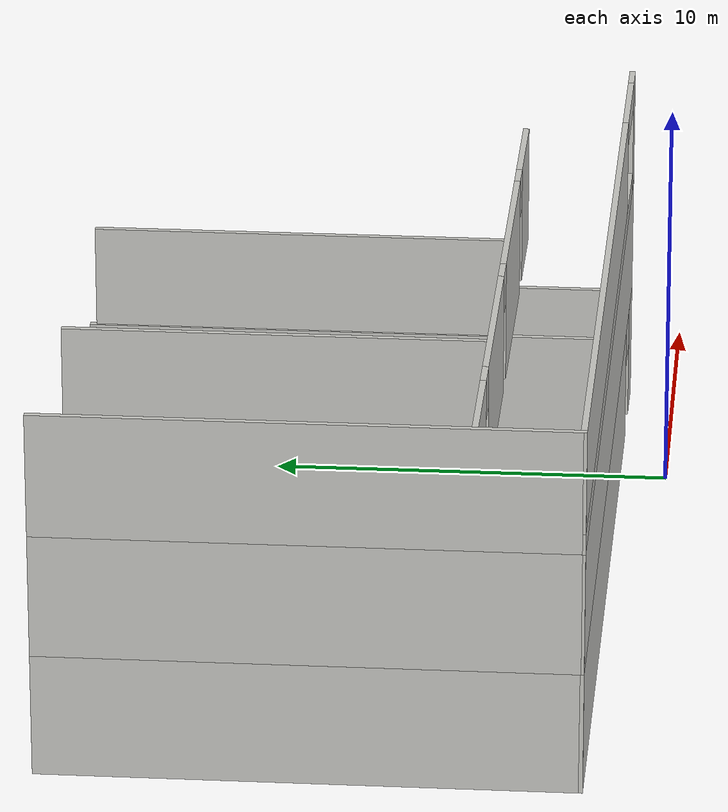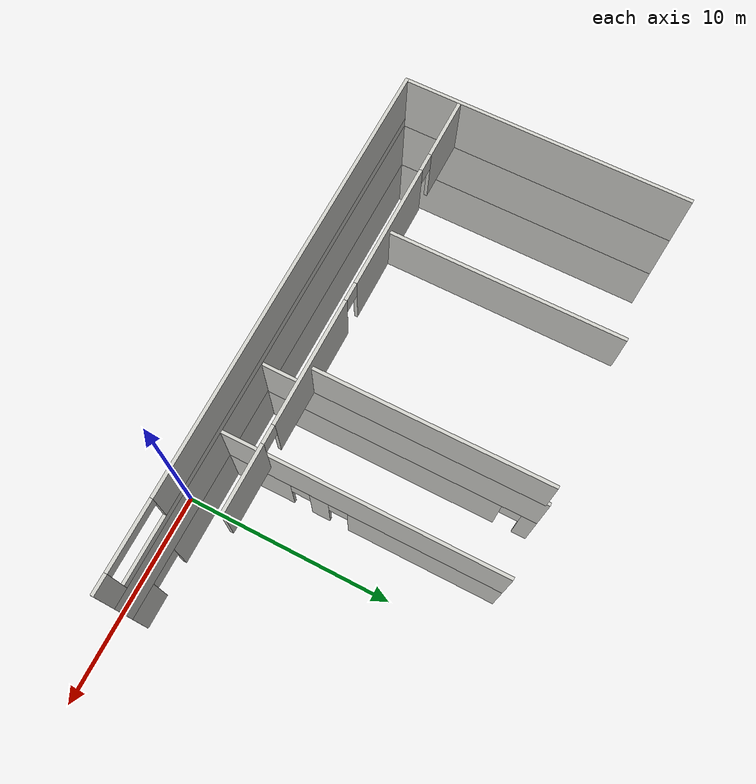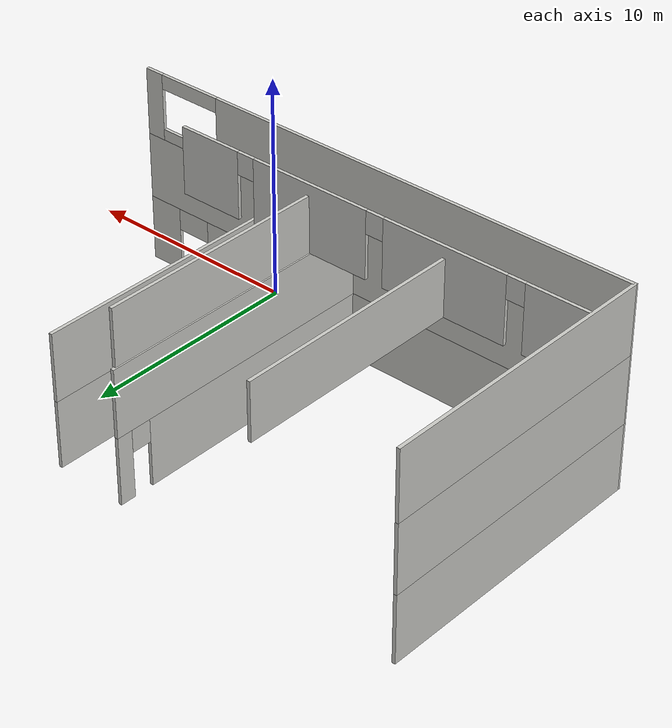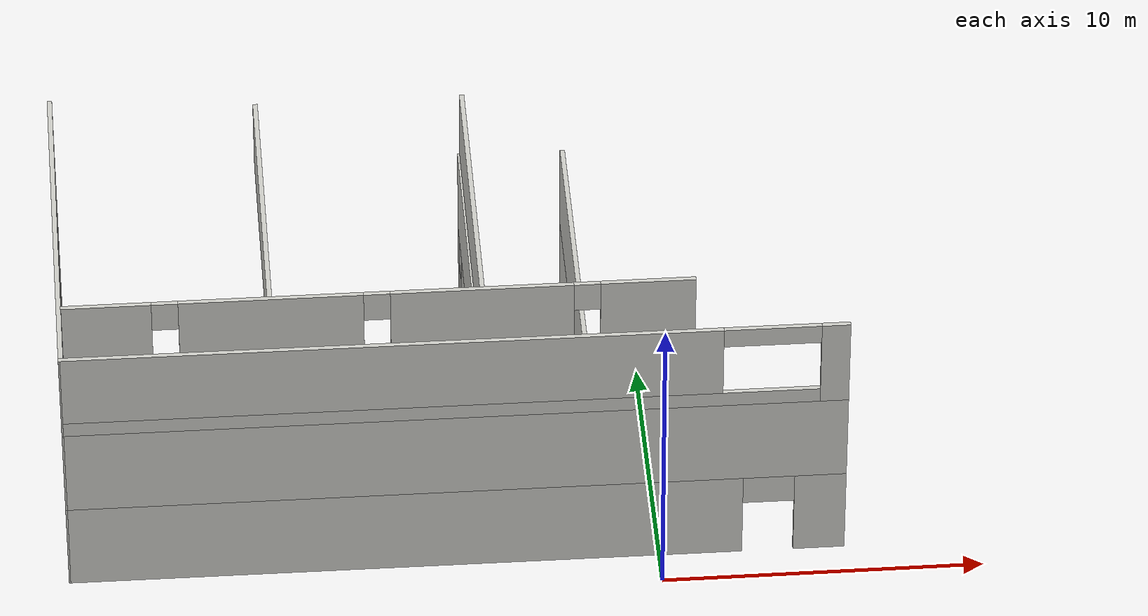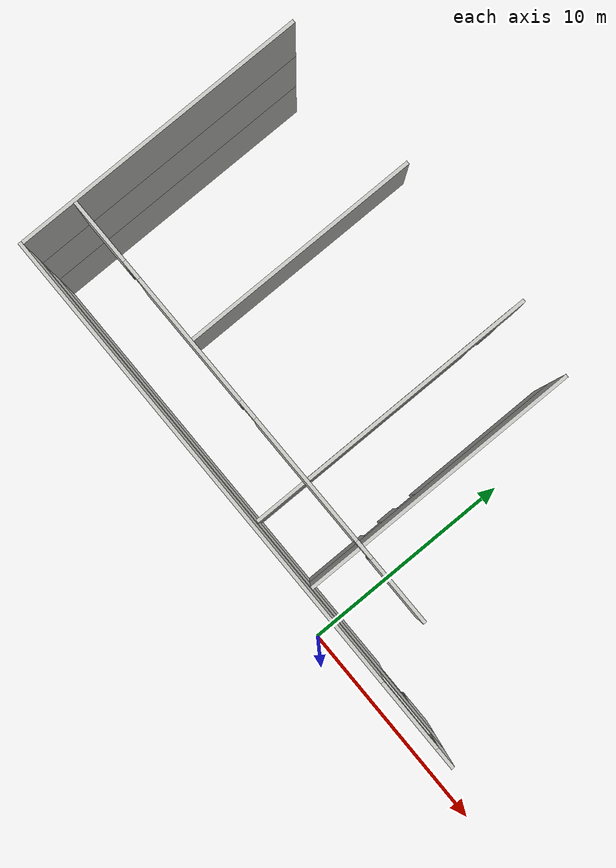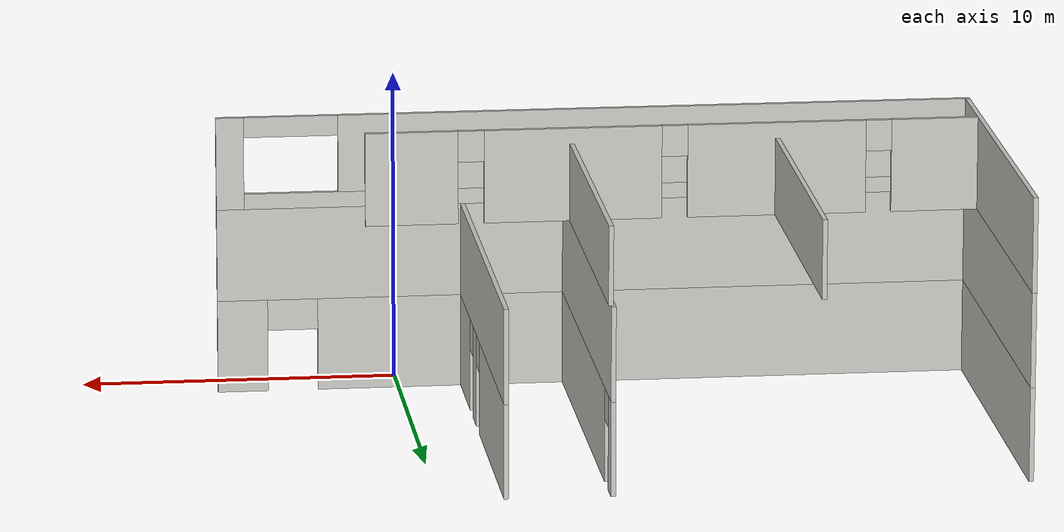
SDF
<sdf version="1.6">
 <model name="add_competition_building">
  <link name="Wall_241">
   <pose>-6.3 1.2595 0 0 -0 3.13968</pose>
   <visual name="Wall_241_Visual_2">
    <pose>-9.67125 0 2.5 0 -0 0</pose>
    <geometry><box><size>1.6 0.15 1</size></box></geometry>
    <material>
     <script><uri>file://media/materials/scripts/gazebo.material</uri><name>Gazebo/CeilingTiled</name></script>
     <ambient>1 1 1 1</ambient>
     <shader type="pixel"/>
    </material>
    <meta><layer>0</layer></meta>
   </visual>
   <visual name="Wall_241_Visual_0">
    <pose>-11.2731 0 1.5 0 -0 0</pose>
    <geometry><box><size>1.60377 0.15 3</size></box></geometry>
    <material>
     <script><uri>file://media/materials/scripts/gazebo.material</uri><name>Gazebo/CeilingTiled</name></script>
     <ambient>1 1 1 1</ambient>
     <shader type="pixel"/>
    </material>
    <meta><layer>0</layer></meta>
   </visual>
   <visual name="Wall_241_Visual_1">
    <pose>1.60189 0 1.5 0 -0 0</pose>
    <geometry><box><size>20.9463 0.15 3</size></box></geometry>
    <material>
     <script><uri>file://media/materials/scripts/gazebo.material</uri><name>Gazebo/CeilingTiled</name></script>
     <ambient>1 1 1 1</ambient>
     <shader type="pixel"/>
    </material>
    <meta><layer>0</layer></meta>
   </visual>
   <collision name="Wall_241_Collision_2">
    <pose>-9.67125 0 2.5 0 -0 0</pose>
    <geometry><box><size>1.6 0.15 1</size></box></geometry>
    <surface>
     <friction>
      <ode><mu>1</mu><mu2>1</mu2><fdir1>0 0 0</fdir1><slip1>0</slip1><slip2>0</slip2></ode>
      <torsional>
       <coefficient>1</coefficient>
       <patch_radius>0</patch_radius>
       <surface_radius>0</surface_radius>
       <use_patch_radius>1</use_patch_radius>
       <ode><slip>0</slip></ode>
      </torsional>
     </friction>
     <bounce><restitution_coefficient>0</restitution_coefficient><threshold>1e+06</threshold></bounce>
     <contact>
      <collide_without_contact>0</collide_without_contact>
      <collide_without_contact_bitmask>1</collide_without_contact_bitmask>
      <collide_bitmask>1</collide_bitmask>
      <ode>
       <soft_cfm>0</soft_cfm>
       <soft_erp>0.2</soft_erp>
       <kp>1e+13</kp>
       <kd>1</kd>
       <max_vel>0.01</max_vel>
       <min_depth>0</min_depth>
      </ode>
      <bullet>
       <split_impulse>1</split_impulse>
       <split_impulse_penetration_threshold>-0.01</split_impulse_penetration_threshold>
       <soft_cfm>0</soft_cfm>
       <soft_erp>0.2</soft_erp>
       <kp>1e+13</kp>
       <kd>1</kd>
      </bullet>
     </contact>
    </surface>
   </collision>
   <collision name="Wall_241_Collision_0">
    <pose>-11.2731 0 1.5 0 -0 0</pose>
    <geometry><box><size>1.60377 0.15 3</size></box></geometry>
    <surface>
     <friction>
      <ode><mu>1</mu><mu2>1</mu2><fdir1>0 0 0</fdir1><slip1>0</slip1><slip2>0</slip2></ode>
      <torsional>
       <coefficient>1</coefficient>
       <patch_radius>0</patch_radius>
       <surface_radius>0</surface_radius>
       <use_patch_radius>1</use_patch_radius>
       <ode><slip>0</slip></ode>
      </torsional>
     </friction>
     <bounce><restitution_coefficient>0</restitution_coefficient><threshold>1e+06</threshold></bounce>
     <contact>
      <collide_without_contact>0</collide_without_contact>
      <collide_without_contact_bitmask>1</collide_without_contact_bitmask>
      <collide_bitmask>1</collide_bitmask>
      <ode>
       <soft_cfm>0</soft_cfm>
       <soft_erp>0.2</soft_erp>
       <kp>1e+13</kp>
       <kd>1</kd>
       <max_vel>0.01</max_vel>
       <min_depth>0</min_depth>
      </ode>
      <bullet>
       <split_impulse>1</split_impulse>
       <split_impulse_penetration_threshold>-0.01</split_impulse_penetration_threshold>
       <soft_cfm>0</soft_cfm>
       <soft_erp>0.2</soft_erp>
       <kp>1e+13</kp>
       <kd>1</kd>
      </bullet>
     </contact>
    </surface>
   </collision>
   <collision name="Wall_241_Collision_1">
    <pose>1.60189 0 1.5 0 -0 0</pose>
    <geometry><box><size>20.9463 0.15 3</size></box></geometry>
    <surface>
     <friction>
      <ode><mu>1</mu><mu2>1</mu2><fdir1>0 0 0</fdir1><slip1>0</slip1><slip2>0</slip2></ode>
      <torsional>
       <coefficient>1</coefficient>
       <patch_radius>0</patch_radius>
       <surface_radius>0</surface_radius>
       <use_patch_radius>1</use_patch_radius>
       <ode><slip>0</slip></ode>
      </torsional>
     </friction>
     <bounce><restitution_coefficient>0</restitution_coefficient><threshold>1e+06</threshold></bounce>
     <contact>
      <collide_without_contact>0</collide_without_contact>
      <collide_without_contact_bitmask>1</collide_without_contact_bitmask>
      <collide_bitmask>1</collide_bitmask>
      <ode>
       <soft_cfm>0</soft_cfm>
       <soft_erp>0.2</soft_erp>
       <kp>1e+13</kp>
       <kd>1</kd>
       <max_vel>0.01</max_vel>
       <min_depth>0</min_depth>
      </ode>
      <bullet>
       <split_impulse>1</split_impulse>
       <split_impulse_penetration_threshold>-0.01</split_impulse_penetration_threshold>
       <soft_cfm>0</soft_cfm>
       <soft_erp>0.2</soft_erp>
       <kp>1e+13</kp>
       <kd>1</kd>
      </bullet>
     </contact>
    </surface>
   </collision>
  </link>
  <link name="Wall_242">
   <pose>-18.3 7.5825 0 0 -0 1.5708</pose>
   <visual name="Wall_242_Visual">
    <pose>0 0 1.5 0 -0 0</pose>
    <geometry><box><size>12.75 0.15 3</size></box></geometry>
    <material>
     <script><uri>file://media/materials/scripts/gazebo.material</uri><name>Gazebo/CeilingTiled</name></script>
     <ambient>1 1 1 1</ambient>
     <shader type="pixel"/>
    </material>
    <meta><layer>0</layer></meta>
   </visual>
   <collision name="Wall_242_Collision">
    <pose>0 0 1.5 0 -0 0</pose>
    <geometry><box><size>12.75 0.15 3</size></box></geometry>
    <surface>
     <friction>
      <ode><mu>1</mu><mu2>1</mu2><fdir1>0 0 0</fdir1><slip1>0</slip1><slip2>0</slip2></ode>
      <torsional>
       <coefficient>1</coefficient>
       <patch_radius>0</patch_radius>
       <surface_radius>0</surface_radius>
       <use_patch_radius>1</use_patch_radius>
       <ode><slip>0</slip></ode>
      </torsional>
     </friction>
     <bounce><restitution_coefficient>0</restitution_coefficient><threshold>1e+06</threshold></bounce>
     <contact>
      <collide_without_contact>0</collide_without_contact>
      <collide_without_contact_bitmask>1</collide_without_contact_bitmask>
      <collide_bitmask>1</collide_bitmask>
      <ode>
       <soft_cfm>0</soft_cfm>
       <soft_erp>0.2</soft_erp>
       <kp>1e+13</kp>
       <kd>1</kd>
       <max_vel>0.01</max_vel>
       <min_depth>0</min_depth>
      </ode>
      <bullet>
       <split_impulse>1</split_impulse>
       <split_impulse_penetration_threshold>-0.01</split_impulse_penetration_threshold>
       <soft_cfm>0</soft_cfm>
       <soft_erp>0.2</soft_erp>
       <kp>1e+13</kp>
       <kd>1</kd>
      </bullet>
     </contact>
    </surface>
   </collision>
  </link>
  <link name="Wall_249">
   <pose>-5.347 7.7335 0 0 0 -1.5708</pose>
   <visual name="Wall_249_Visual_0">
    <pose>-6.02366 0 1.5 0 -0 0</pose>
    <geometry><box><size>0.702686 0.15 3</size></box></geometry>
    <material>
     <script><uri>file://media/materials/scripts/gazebo.material</uri><name>Gazebo/CeilingTiled</name></script>
     <ambient>1 1 1 1</ambient>
     <shader type="pixel"/>
    </material>
    <meta><layer>0</layer></meta>
   </visual>
   <visual name="Wall_249_Visual_1">
    <pose>0.801343 0 1.5 0 -0 0</pose>
    <geometry><box><size>11.1473 0.15 3</size></box></geometry>
    <material>
     <script><uri>file://media/materials/scripts/gazebo.material</uri><name>Gazebo/CeilingTiled</name></script>
     <ambient>1 1 1 1</ambient>
     <shader type="pixel"/>
    </material>
    <meta><layer>0</layer></meta>
   </visual>
   <visual name="Wall_249_Visual_2">
    <pose>-5.22231 0 2.5 0 -0 0</pose>
    <geometry><box><size>0.9 0.15 1</size></box></geometry>
    <material>
     <script><uri>file://media/materials/scripts/gazebo.material</uri><name>Gazebo/CeilingTiled</name></script>
     <ambient>1 1 1 1</ambient>
     <shader type="pixel"/>
    </material>
    <meta><layer>0</layer></meta>
   </visual>
   <collision name="Wall_249_Collision_2">
    <pose>-5.22231 0 2.5 0 -0 0</pose>
    <geometry><box><size>0.9 0.15 1</size></box></geometry>
    <surface>
     <friction>
      <ode><mu>1</mu><mu2>1</mu2><fdir1>0 0 0</fdir1><slip1>0</slip1><slip2>0</slip2></ode>
      <torsional>
       <coefficient>1</coefficient>
       <patch_radius>0</patch_radius>
       <surface_radius>0</surface_radius>
       <use_patch_radius>1</use_patch_radius>
       <ode><slip>0</slip></ode>
      </torsional>
     </friction>
     <bounce><restitution_coefficient>0</restitution_coefficient><threshold>1e+06</threshold></bounce>
     <contact>
      <collide_without_contact>0</collide_without_contact>
      <collide_without_contact_bitmask>1</collide_without_contact_bitmask>
      <collide_bitmask>1</collide_bitmask>
      <ode>
       <soft_cfm>0</soft_cfm>
       <soft_erp>0.2</soft_erp>
       <kp>1e+13</kp>
       <kd>1</kd>
       <max_vel>0.01</max_vel>
       <min_depth>0</min_depth>
      </ode>
      <bullet>
       <split_impulse>1</split_impulse>
       <split_impulse_penetration_threshold>-0.01</split_impulse_penetration_threshold>
       <soft_cfm>0</soft_cfm>
       <soft_erp>0.2</soft_erp>
       <kp>1e+13</kp>
       <kd>1</kd>
      </bullet>
     </contact>
    </surface>
   </collision>
   <collision name="Wall_249_Collision_1">
    <pose>0.801343 0 1.5 0 -0 0</pose>
    <geometry><box><size>11.1473 0.15 3</size></box></geometry>
    <surface>
     <friction>
      <ode><mu>1</mu><mu2>1</mu2><fdir1>0 0 0</fdir1><slip1>0</slip1><slip2>0</slip2></ode>
      <torsional>
       <coefficient>1</coefficient>
       <patch_radius>0</patch_radius>
       <surface_radius>0</surface_radius>
       <use_patch_radius>1</use_patch_radius>
       <ode><slip>0</slip></ode>
      </torsional>
     </friction>
     <bounce><restitution_coefficient>0</restitution_coefficient><threshold>1e+06</threshold></bounce>
     <contact>
      <collide_without_contact>0</collide_without_contact>
      <collide_without_contact_bitmask>1</collide_without_contact_bitmask>
      <collide_bitmask>1</collide_bitmask>
      <ode>
       <soft_cfm>0</soft_cfm>
       <soft_erp>0.2</soft_erp>
       <kp>1e+13</kp>
       <kd>1</kd>
       <max_vel>0.01</max_vel>
       <min_depth>0</min_depth>
      </ode>
      <bullet>
       <split_impulse>1</split_impulse>
       <split_impulse_penetration_threshold>-0.01</split_impulse_penetration_threshold>
       <soft_cfm>0</soft_cfm>
       <soft_erp>0.2</soft_erp>
       <kp>1e+13</kp>
       <kd>1</kd>
      </bullet>
     </contact>
    </surface>
   </collision>
   <collision name="Wall_249_Collision_0">
    <pose>-6.02366 0 1.5 0 -0 0</pose>
    <geometry><box><size>0.702686 0.15 3</size></box></geometry>
    <surface>
     <friction>
      <ode><mu>1</mu><mu2>1</mu2><fdir1>0 0 0</fdir1><slip1>0</slip1><slip2>0</slip2></ode>
      <torsional>
       <coefficient>1</coefficient>
       <patch_radius>0</patch_radius>
       <surface_radius>0</surface_radius>
       <use_patch_radius>1</use_patch_radius>
       <ode><slip>0</slip></ode>
      </torsional>
     </friction>
     <bounce><restitution_coefficient>0</restitution_coefficient><threshold>1e+06</threshold></bounce>
     <contact>
      <collide_without_contact>0</collide_without_contact>
      <collide_without_contact_bitmask>1</collide_without_contact_bitmask>
      <collide_bitmask>1</collide_bitmask>
      <ode>
       <soft_cfm>0</soft_cfm>
       <soft_erp>0.2</soft_erp>
       <kp>1e+13</kp>
       <kd>1</kd>
       <max_vel>0.01</max_vel>
       <min_depth>0</min_depth>
      </ode>
      <bullet>
       <split_impulse>1</split_impulse>
       <split_impulse_penetration_threshold>-0.01</split_impulse_penetration_threshold>
       <soft_cfm>0</soft_cfm>
       <soft_erp>0.2</soft_erp>
       <kp>1e+13</kp>
       <kd>1</kd>
      </bullet>
     </contact>
    </surface>
   </collision>
  </link>
  <link name="Wall_251">
   <pose>-2.075 7.6535 0 0 0 -1.5708</pose>
   <visual name="Wall_251_Visual_0">
    <pose>-2.83173 0 1.5 0 -0 0</pose>
    <geometry><box><size>7.08653 0.15 3</size></box></geometry>
    <material>
     <script><uri>file://media/materials/scripts/gazebo.material</uri><name>Gazebo/CeilingTiled</name></script>
     <ambient>1 1 1 1</ambient>
     <shader type="pixel"/>
    </material>
    <meta><layer>0</layer></meta>
   </visual>
   <visual name="Wall_251_Visual_1">
    <pose>2.05929 0 1.5 0 -0 0</pose>
    <geometry><box><size>0.895514 0.15 3</size></box></geometry>
    <material>
     <script><uri>file://media/materials/scripts/gazebo.material</uri><name>Gazebo/CeilingTiled</name></script>
     <ambient>1 1 1 1</ambient>
     <shader type="pixel"/>
    </material>
    <meta><layer>0</layer></meta>
   </visual>
   <visual name="Wall_251_Visual_3">
    <pose>1.16153 0 2.5 0 -0 0</pose>
    <geometry><box><size>0.9 0.15 1</size></box></geometry>
    <material>
     <script><uri>file://media/materials/scripts/gazebo.material</uri><name>Gazebo/CeilingTiled</name></script>
     <ambient>1 1 1 1</ambient>
     <shader type="pixel"/>
    </material>
    <meta><layer>0</layer></meta>
   </visual>
   <visual name="Wall_251_Visual_4">
    <pose>2.95705 0 2.5 0 -0 0</pose>
    <geometry><box><size>0.9 0.15 1</size></box></geometry>
    <material>
     <script><uri>file://media/materials/scripts/gazebo.material</uri><name>Gazebo/CeilingTiled</name></script>
     <ambient>1 1 1 1</ambient>
     <shader type="pixel"/>
    </material>
    <meta><layer>0</layer></meta>
   </visual>
   <visual name="Wall_251_Visual_2">
    <pose>4.89102 0 1.5 0 -0 0</pose>
    <geometry><box><size>2.96795 0.15 3</size></box></geometry>
    <material>
     <script><uri>file://media/materials/scripts/gazebo.material</uri><name>Gazebo/CeilingTiled</name></script>
     <ambient>1 1 1 1</ambient>
     <shader type="pixel"/>
    </material>
    <meta><layer>0</layer></meta>
   </visual>
   <collision name="Wall_251_Collision_3">
    <pose>1.16153 0 2.5 0 -0 0</pose>
    <geometry><box><size>0.9 0.15 1</size></box></geometry>
    <surface>
     <friction>
      <ode><mu>1</mu><mu2>1</mu2><fdir1>0 0 0</fdir1><slip1>0</slip1><slip2>0</slip2></ode>
      <torsional>
       <coefficient>1</coefficient>
       <patch_radius>0</patch_radius>
       <surface_radius>0</surface_radius>
       <use_patch_radius>1</use_patch_radius>
       <ode><slip>0</slip></ode>
      </torsional>
     </friction>
     <bounce><restitution_coefficient>0</restitution_coefficient><threshold>1e+06</threshold></bounce>
     <contact>
      <collide_without_contact>0</collide_without_contact>
      <collide_without_contact_bitmask>1</collide_without_contact_bitmask>
      <collide_bitmask>1</collide_bitmask>
      <ode>
       <soft_cfm>0</soft_cfm>
       <soft_erp>0.2</soft_erp>
       <kp>1e+13</kp>
       <kd>1</kd>
       <max_vel>0.01</max_vel>
       <min_depth>0</min_depth>
      </ode>
      <bullet>
       <split_impulse>1</split_impulse>
       <split_impulse_penetration_threshold>-0.01</split_impulse_penetration_threshold>
       <soft_cfm>0</soft_cfm>
       <soft_erp>0.2</soft_erp>
       <kp>1e+13</kp>
       <kd>1</kd>
      </bullet>
     </contact>
    </surface>
   </collision>
   <collision name="Wall_251_Collision_4">
    <pose>2.95705 0 2.5 0 -0 0</pose>
    <geometry><box><size>0.9 0.15 1</size></box></geometry>
    <surface>
     <friction>
      <ode><mu>1</mu><mu2>1</mu2><fdir1>0 0 0</fdir1><slip1>0</slip1><slip2>0</slip2></ode>
      <torsional>
       <coefficient>1</coefficient>
       <patch_radius>0</patch_radius>
       <surface_radius>0</surface_radius>
       <use_patch_radius>1</use_patch_radius>
       <ode><slip>0</slip></ode>
      </torsional>
     </friction>
     <bounce><restitution_coefficient>0</restitution_coefficient><threshold>1e+06</threshold></bounce>
     <contact>
      <collide_without_contact>0</collide_without_contact>
      <collide_without_contact_bitmask>1</collide_without_contact_bitmask>
      <collide_bitmask>1</collide_bitmask>
      <ode>
       <soft_cfm>0</soft_cfm>
       <soft_erp>0.2</soft_erp>
       <kp>1e+13</kp>
       <kd>1</kd>
       <max_vel>0.01</max_vel>
       <min_depth>0</min_depth>
      </ode>
      <bullet>
       <split_impulse>1</split_impulse>
       <split_impulse_penetration_threshold>-0.01</split_impulse_penetration_threshold>
       <soft_cfm>0</soft_cfm>
       <soft_erp>0.2</soft_erp>
       <kp>1e+13</kp>
       <kd>1</kd>
      </bullet>
     </contact>
    </surface>
   </collision>
   <collision name="Wall_251_Collision_0">
    <pose>-2.83173 0 1.5 0 -0 0</pose>
    <geometry><box><size>7.08653 0.15 3</size></box></geometry>
    <surface>
     <friction>
      <ode><mu>1</mu><mu2>1</mu2><fdir1>0 0 0</fdir1><slip1>0</slip1><slip2>0</slip2></ode>
      <torsional>
       <coefficient>1</coefficient>
       <patch_radius>0</patch_radius>
       <surface_radius>0</surface_radius>
       <use_patch_radius>1</use_patch_radius>
       <ode><slip>0</slip></ode>
      </torsional>
     </friction>
     <bounce><restitution_coefficient>0</restitution_coefficient><threshold>1e+06</threshold></bounce>
     <contact>
      <collide_without_contact>0</collide_without_contact>
      <collide_without_contact_bitmask>1</collide_without_contact_bitmask>
      <collide_bitmask>1</collide_bitmask>
      <ode>
       <soft_cfm>0</soft_cfm>
       <soft_erp>0.2</soft_erp>
       <kp>1e+13</kp>
       <kd>1</kd>
       <max_vel>0.01</max_vel>
       <min_depth>0</min_depth>
      </ode>
      <bullet>
       <split_impulse>1</split_impulse>
       <split_impulse_penetration_threshold>-0.01</split_impulse_penetration_threshold>
       <soft_cfm>0</soft_cfm>
       <soft_erp>0.2</soft_erp>
       <kp>1e+13</kp>
       <kd>1</kd>
      </bullet>
     </contact>
    </surface>
   </collision>
   <collision name="Wall_251_Collision_1">
    <pose>2.05929 0 1.5 0 -0 0</pose>
    <geometry><box><size>0.895514 0.15 3</size></box></geometry>
    <surface>
     <friction>
      <ode><mu>1</mu><mu2>1</mu2><fdir1>0 0 0</fdir1><slip1>0</slip1><slip2>0</slip2></ode>
      <torsional>
       <coefficient>1</coefficient>
       <patch_radius>0</patch_radius>
       <surface_radius>0</surface_radius>
       <use_patch_radius>1</use_patch_radius>
       <ode><slip>0</slip></ode>
      </torsional>
     </friction>
     <bounce><restitution_coefficient>0</restitution_coefficient><threshold>1e+06</threshold></bounce>
     <contact>
      <collide_without_contact>0</collide_without_contact>
      <collide_without_contact_bitmask>1</collide_without_contact_bitmask>
      <collide_bitmask>1</collide_bitmask>
      <ode>
       <soft_cfm>0</soft_cfm>
       <soft_erp>0.2</soft_erp>
       <kp>1e+13</kp>
       <kd>1</kd>
       <max_vel>0.01</max_vel>
       <min_depth>0</min_depth>
      </ode>
      <bullet>
       <split_impulse>1</split_impulse>
       <split_impulse_penetration_threshold>-0.01</split_impulse_penetration_threshold>
       <soft_cfm>0</soft_cfm>
       <soft_erp>0.2</soft_erp>
       <kp>1e+13</kp>
       <kd>1</kd>
      </bullet>
     </contact>
    </surface>
   </collision>
   <collision name="Wall_251_Collision_2">
    <pose>4.89102 0 1.5 0 -0 0</pose>
    <geometry><box><size>2.96795 0.15 3</size></box></geometry>
    <surface>
     <friction>
      <ode><mu>1</mu><mu2>1</mu2><fdir1>0 0 0</fdir1><slip1>0</slip1><slip2>0</slip2></ode>
      <torsional>
       <coefficient>1</coefficient>
       <patch_radius>0</patch_radius>
       <surface_radius>0</surface_radius>
       <use_patch_radius>1</use_patch_radius>
       <ode><slip>0</slip></ode>
      </torsional>
     </friction>
     <bounce><restitution_coefficient>0</restitution_coefficient><threshold>1e+06</threshold></bounce>
     <contact>
      <collide_without_contact>0</collide_without_contact>
      <collide_without_contact_bitmask>1</collide_without_contact_bitmask>
      <collide_bitmask>1</collide_bitmask>
      <ode>
       <soft_cfm>0</soft_cfm>
       <soft_erp>0.2</soft_erp>
       <kp>1e+13</kp>
       <kd>1</kd>
       <max_vel>0.01</max_vel>
       <min_depth>0</min_depth>
      </ode>
      <bullet>
       <split_impulse>1</split_impulse>
       <split_impulse_penetration_threshold>-0.01</split_impulse_penetration_threshold>
       <soft_cfm>0</soft_cfm>
       <soft_erp>0.2</soft_erp>
       <kp>1e+13</kp>
       <kd>1</kd>
      </bullet>
     </contact>
    </surface>
   </collision>
  </link>
  <link name="Wall_281">
   <pose>-6.3 1.2595 3 0 -0 3.13968</pose>
   <visual name="Wall_281_Visual">
    <pose>0 0 1.5 0 -0 0</pose>
    <geometry><box><size>24.15 0.15 3</size></box></geometry>
    <material>
     <script><uri>file://media/materials/scripts/gazebo.material</uri><name>Gazebo/CeilingTiled</name></script>
     <ambient>1 1 1 1</ambient>
     <shader type="pixel"/>
    </material>
    <meta><layer>1</layer></meta>
   </visual>
   <collision name="Wall_281_Collision">
    <pose>0 0 1.5 0 -0 0</pose>
    <geometry><box><size>24.15 0.15 3</size></box></geometry>
    <surface>
     <friction>
      <ode><mu>1</mu><mu2>1</mu2><fdir1>0 0 0</fdir1><slip1>0</slip1><slip2>0</slip2></ode>
      <torsional>
       <coefficient>1</coefficient>
       <patch_radius>0</patch_radius>
       <surface_radius>0</surface_radius>
       <use_patch_radius>1</use_patch_radius>
       <ode><slip>0</slip></ode>
      </torsional>
     </friction>
     <bounce><restitution_coefficient>0</restitution_coefficient><threshold>1e+06</threshold></bounce>
     <contact>
      <collide_without_contact>0</collide_without_contact>
      <collide_without_contact_bitmask>1</collide_without_contact_bitmask>
      <collide_bitmask>1</collide_bitmask>
      <ode>
       <soft_cfm>0</soft_cfm>
       <soft_erp>0.2</soft_erp>
       <kp>1e+13</kp>
       <kd>1</kd>
       <max_vel>0.01</max_vel>
       <min_depth>0</min_depth>
      </ode>
      <bullet>
       <split_impulse>1</split_impulse>
       <split_impulse_penetration_threshold>-0.01</split_impulse_penetration_threshold>
       <soft_cfm>0</soft_cfm>
       <soft_erp>0.2</soft_erp>
       <kp>1e+13</kp>
       <kd>1</kd>
      </bullet>
     </contact>
    </surface>
   </collision>
  </link>
  <link name="Wall_282">
   <pose>-18.3 7.5825 3 0 -0 1.5708</pose>
   <visual name="Wall_282_Visual">
    <pose>0 0 1.5 0 -0 0</pose>
    <geometry><box><size>12.75 0.15 3</size></box></geometry>
    <material>
     <script><uri>file://media/materials/scripts/gazebo.material</uri><name>Gazebo/CeilingTiled</name></script>
     <ambient>1 1 1 1</ambient>
     <shader type="pixel"/>
    </material>
    <meta><layer>1</layer></meta>
   </visual>
   <collision name="Wall_282_Collision">
    <pose>0 0 1.5 0 -0 0</pose>
    <geometry><box><size>12.75 0.15 3</size></box></geometry>
    <surface>
     <friction>
      <ode><mu>1</mu><mu2>1</mu2><fdir1>0 0 0</fdir1><slip1>0</slip1><slip2>0</slip2></ode>
      <torsional>
       <coefficient>1</coefficient>
       <patch_radius>0</patch_radius>
       <surface_radius>0</surface_radius>
       <use_patch_radius>1</use_patch_radius>
       <ode><slip>0</slip></ode>
      </torsional>
     </friction>
     <bounce><restitution_coefficient>0</restitution_coefficient><threshold>1e+06</threshold></bounce>
     <contact>
      <collide_without_contact>0</collide_without_contact>
      <collide_without_contact_bitmask>1</collide_without_contact_bitmask>
      <collide_bitmask>1</collide_bitmask>
      <ode>
       <soft_cfm>0</soft_cfm>
       <soft_erp>0.2</soft_erp>
       <kp>1e+13</kp>
       <kd>1</kd>
       <max_vel>0.01</max_vel>
       <min_depth>0</min_depth>
      </ode>
      <bullet>
       <split_impulse>1</split_impulse>
       <split_impulse_penetration_threshold>-0.01</split_impulse_penetration_threshold>
       <soft_cfm>0</soft_cfm>
       <soft_erp>0.2</soft_erp>
       <kp>1e+13</kp>
       <kd>1</kd>
      </bullet>
     </contact>
    </surface>
   </collision>
  </link>
  <link name="Wall_287">
   <pose>-5.347 7.7335 3 0 0 -1.5708</pose>
   <visual name="Wall_287_Visual">
    <pose>0 0 1.5 0 -0 0</pose>
    <geometry><box><size>12.75 0.15 3</size></box></geometry>
    <material>
     <script><uri>file://media/materials/scripts/gazebo.material</uri><name>Gazebo/CeilingTiled</name></script>
     <ambient>1 1 1 1</ambient>
     <shader type="pixel"/>
    </material>
    <meta><layer>1</layer></meta>
   </visual>
   <collision name="Wall_287_Collision">
    <pose>0 0 1.5 0 -0 0</pose>
    <geometry><box><size>12.75 0.15 3</size></box></geometry>
    <surface>
     <friction>
      <ode><mu>1</mu><mu2>1</mu2><fdir1>0 0 0</fdir1><slip1>0</slip1><slip2>0</slip2></ode>
      <torsional>
       <coefficient>1</coefficient>
       <patch_radius>0</patch_radius>
       <surface_radius>0</surface_radius>
       <use_patch_radius>1</use_patch_radius>
       <ode><slip>0</slip></ode>
      </torsional>
     </friction>
     <bounce><restitution_coefficient>0</restitution_coefficient><threshold>1e+06</threshold></bounce>
     <contact>
      <collide_without_contact>0</collide_without_contact>
      <collide_without_contact_bitmask>1</collide_without_contact_bitmask>
      <collide_bitmask>1</collide_bitmask>
      <ode>
       <soft_cfm>0</soft_cfm>
       <soft_erp>0.2</soft_erp>
       <kp>1e+13</kp>
       <kd>1</kd>
       <max_vel>0.01</max_vel>
       <min_depth>0</min_depth>
      </ode>
      <bullet>
       <split_impulse>1</split_impulse>
       <split_impulse_penetration_threshold>-0.01</split_impulse_penetration_threshold>
       <soft_cfm>0</soft_cfm>
       <soft_erp>0.2</soft_erp>
       <kp>1e+13</kp>
       <kd>1</kd>
      </bullet>
     </contact>
    </surface>
   </collision>
  </link>
  <link name="Wall_288">
   <pose>-2.075 7.6535 3 0 0 -1.5708</pose>
   <visual name="Wall_288_Visual">
    <pose>0 0 1.5 0 -0 0</pose>
    <geometry><box><size>12.75 0.15 3</size></box></geometry>
    <material>
     <script><uri>file://media/materials/scripts/gazebo.material</uri><name>Gazebo/CeilingTiled</name></script>
     <ambient>1 1 1 1</ambient>
     <shader type="pixel"/>
    </material>
    <meta><layer>1</layer></meta>
   </visual>
   <collision name="Wall_288_Collision">
    <pose>0 0 1.5 0 -0 0</pose>
    <geometry><box><size>12.75 0.15 3</size></box></geometry>
    <surface>
     <friction>
      <ode><mu>1</mu><mu2>1</mu2><fdir1>0 0 0</fdir1><slip1>0</slip1><slip2>0</slip2></ode>
      <torsional>
       <coefficient>1</coefficient>
       <patch_radius>0</patch_radius>
       <surface_radius>0</surface_radius>
       <use_patch_radius>1</use_patch_radius>
       <ode><slip>0</slip></ode>
      </torsional>
     </friction>
     <bounce><restitution_coefficient>0</restitution_coefficient><threshold>1e+06</threshold></bounce>
     <contact>
      <collide_without_contact>0</collide_without_contact>
      <collide_without_contact_bitmask>1</collide_without_contact_bitmask>
      <collide_bitmask>1</collide_bitmask>
      <ode>
       <soft_cfm>0</soft_cfm>
       <soft_erp>0.2</soft_erp>
       <kp>1e+13</kp>
       <kd>1</kd>
       <max_vel>0.01</max_vel>
       <min_depth>0</min_depth>
      </ode>
      <bullet>
       <split_impulse>1</split_impulse>
       <split_impulse_penetration_threshold>-0.01</split_impulse_penetration_threshold>
       <soft_cfm>0</soft_cfm>
       <soft_erp>0.2</soft_erp>
       <kp>1e+13</kp>
       <kd>1</kd>
      </bullet>
     </contact>
    </surface>
   </collision>
  </link>
  <link name="Wall_336">
   <pose>-6.3 1.2595 6 0 -0 3.13968</pose>
   <visual name="Wall_336_Visual_0">
    <pose>-11.6347 0 1.5 0 -0 0</pose>
    <geometry><box><size>0.880725 0.15 3</size></box></geometry>
    <material>
     <script><uri>file://media/materials/scripts/gazebo.material</uri><name>Gazebo/CeilingTiled</name></script>
     <ambient>1 1 1 1</ambient>
     <shader type="pixel"/>
    </material>
    <meta><layer>2</layer></meta>
   </visual>
   <visual name="Wall_336_Visual_1">
    <pose>0.440363 0 0.25 0 -0 0</pose>
    <geometry><box><size>23.2693 0.15 0.5</size></box></geometry>
    <material>
     <script><uri>file://media/materials/scripts/gazebo.material</uri><name>Gazebo/CeilingTiled</name></script>
     <ambient>1 1 1 1</ambient>
     <shader type="pixel"/>
    </material>
    <meta><layer>2</layer></meta>
   </visual>
   <visual name="Wall_336_Visual_3">
    <pose>-9.6943 0 2.675 0 -0 0</pose>
    <geometry><box><size>3 0.15 0.65</size></box></geometry>
    <material>
     <script><uri>file://media/materials/scripts/gazebo.material</uri><name>Gazebo/CeilingTiled</name></script>
     <ambient>1 1 1 1</ambient>
     <shader type="pixel"/>
    </material>
    <meta><layer>2</layer></meta>
   </visual>
   <visual name="Wall_336_Visual_2">
    <pose>1.94036 0 1.75 0 -0 0</pose>
    <geometry><box><size>20.2693 0.15 2.5</size></box></geometry>
    <material>
     <script><uri>file://media/materials/scripts/gazebo.material</uri><name>Gazebo/CeilingTiled</name></script>
     <ambient>1 1 1 1</ambient>
     <shader type="pixel"/>
    </material>
    <meta><layer>2</layer></meta>
   </visual>
   <collision name="Wall_336_Collision_1">
    <pose>0.440363 0 0.25 0 -0 0</pose>
    <geometry><box><size>23.2693 0.15 0.5</size></box></geometry>
    <surface>
     <friction>
      <ode><mu>1</mu><mu2>1</mu2><fdir1>0 0 0</fdir1><slip1>0</slip1><slip2>0</slip2></ode>
      <torsional>
       <coefficient>1</coefficient>
       <patch_radius>0</patch_radius>
       <surface_radius>0</surface_radius>
       <use_patch_radius>1</use_patch_radius>
       <ode><slip>0</slip></ode>
      </torsional>
     </friction>
     <bounce><restitution_coefficient>0</restitution_coefficient><threshold>1e+06</threshold></bounce>
     <contact>
      <collide_without_contact>0</collide_without_contact>
      <collide_without_contact_bitmask>1</collide_without_contact_bitmask>
      <collide_bitmask>1</collide_bitmask>
      <ode>
       <soft_cfm>0</soft_cfm>
       <soft_erp>0.2</soft_erp>
       <kp>1e+13</kp>
       <kd>1</kd>
       <max_vel>0.01</max_vel>
       <min_depth>0</min_depth>
      </ode>
      <bullet>
       <split_impulse>1</split_impulse>
       <split_impulse_penetration_threshold>-0.01</split_impulse_penetration_threshold>
       <soft_cfm>0</soft_cfm>
       <soft_erp>0.2</soft_erp>
       <kp>1e+13</kp>
       <kd>1</kd>
      </bullet>
     </contact>
    </surface>
   </collision>
   <collision name="Wall_336_Collision_0">
    <pose>-11.6347 0 1.5 0 -0 0</pose>
    <geometry><box><size>0.880725 0.15 3</size></box></geometry>
    <surface>
     <friction>
      <ode><mu>1</mu><mu2>1</mu2><fdir1>0 0 0</fdir1><slip1>0</slip1><slip2>0</slip2></ode>
      <torsional>
       <coefficient>1</coefficient>
       <patch_radius>0</patch_radius>
       <surface_radius>0</surface_radius>
       <use_patch_radius>1</use_patch_radius>
       <ode><slip>0</slip></ode>
      </torsional>
     </friction>
     <bounce><restitution_coefficient>0</restitution_coefficient><threshold>1e+06</threshold></bounce>
     <contact>
      <collide_without_contact>0</collide_without_contact>
      <collide_without_contact_bitmask>1</collide_without_contact_bitmask>
      <collide_bitmask>1</collide_bitmask>
      <ode>
       <soft_cfm>0</soft_cfm>
       <soft_erp>0.2</soft_erp>
       <kp>1e+13</kp>
       <kd>1</kd>
       <max_vel>0.01</max_vel>
       <min_depth>0</min_depth>
      </ode>
      <bullet>
       <split_impulse>1</split_impulse>
       <split_impulse_penetration_threshold>-0.01</split_impulse_penetration_threshold>
       <soft_cfm>0</soft_cfm>
       <soft_erp>0.2</soft_erp>
       <kp>1e+13</kp>
       <kd>1</kd>
      </bullet>
     </contact>
    </surface>
   </collision>
   <collision name="Wall_336_Collision_3">
    <pose>-9.6943 0 2.675 0 -0 0</pose>
    <geometry><box><size>3 0.15 0.65</size></box></geometry>
    <surface>
     <friction>
      <ode><mu>1</mu><mu2>1</mu2><fdir1>0 0 0</fdir1><slip1>0</slip1><slip2>0</slip2></ode>
      <torsional>
       <coefficient>1</coefficient>
       <patch_radius>0</patch_radius>
       <surface_radius>0</surface_radius>
       <use_patch_radius>1</use_patch_radius>
       <ode><slip>0</slip></ode>
      </torsional>
     </friction>
     <bounce><restitution_coefficient>0</restitution_coefficient><threshold>1e+06</threshold></bounce>
     <contact>
      <collide_without_contact>0</collide_without_contact>
      <collide_without_contact_bitmask>1</collide_without_contact_bitmask>
      <collide_bitmask>1</collide_bitmask>
      <ode>
       <soft_cfm>0</soft_cfm>
       <soft_erp>0.2</soft_erp>
       <kp>1e+13</kp>
       <kd>1</kd>
       <max_vel>0.01</max_vel>
       <min_depth>0</min_depth>
      </ode>
      <bullet>
       <split_impulse>1</split_impulse>
       <split_impulse_penetration_threshold>-0.01</split_impulse_penetration_threshold>
       <soft_cfm>0</soft_cfm>
       <soft_erp>0.2</soft_erp>
       <kp>1e+13</kp>
       <kd>1</kd>
      </bullet>
     </contact>
    </surface>
   </collision>
   <collision name="Wall_336_Collision_2">
    <pose>1.94036 0 1.75 0 -0 0</pose>
    <geometry><box><size>20.2693 0.15 2.5</size></box></geometry>
    <surface>
     <friction>
      <ode><mu>1</mu><mu2>1</mu2><fdir1>0 0 0</fdir1><slip1>0</slip1><slip2>0</slip2></ode>
      <torsional>
       <coefficient>1</coefficient>
       <patch_radius>0</patch_radius>
       <surface_radius>0</surface_radius>
       <use_patch_radius>1</use_patch_radius>
       <ode><slip>0</slip></ode>
      </torsional>
     </friction>
     <bounce><restitution_coefficient>0</restitution_coefficient><threshold>1e+06</threshold></bounce>
     <contact>
      <collide_without_contact>0</collide_without_contact>
      <collide_without_contact_bitmask>1</collide_without_contact_bitmask>
      <collide_bitmask>1</collide_bitmask>
      <ode>
       <soft_cfm>0</soft_cfm>
       <soft_erp>0.2</soft_erp>
       <kp>1e+13</kp>
       <kd>1</kd>
       <max_vel>0.01</max_vel>
       <min_depth>0</min_depth>
      </ode>
      <bullet>
       <split_impulse>1</split_impulse>
       <split_impulse_penetration_threshold>-0.01</split_impulse_penetration_threshold>
       <soft_cfm>0</soft_cfm>
       <soft_erp>0.2</soft_erp>
       <kp>1e+13</kp>
       <kd>1</kd>
      </bullet>
     </contact>
    </surface>
   </collision>
  </link>
  <link name="Wall_337">
   <pose>-18.3 7.5825 6 0 -0 1.5708</pose>
   <visual name="Wall_337_Visual">
    <pose>0 0 1.5 0 -0 0</pose>
    <geometry><box><size>12.75 0.15 3</size></box></geometry>
    <material>
     <script><uri>file://media/materials/scripts/gazebo.material</uri><name>Gazebo/CeilingTiled</name></script>
     <ambient>1 1 1 1</ambient>
     <shader type="pixel"/>
    </material>
    <meta><layer>2</layer></meta>
   </visual>
   <collision name="Wall_337_Collision">
    <pose>0 0 1.5 0 -0 0</pose>
    <geometry><box><size>12.75 0.15 3</size></box></geometry>
    <surface>
     <friction>
      <ode><mu>1</mu><mu2>1</mu2><fdir1>0 0 0</fdir1><slip1>0</slip1><slip2>0</slip2></ode>
      <torsional>
       <coefficient>1</coefficient>
       <patch_radius>0</patch_radius>
       <surface_radius>0</surface_radius>
       <use_patch_radius>1</use_patch_radius>
       <ode><slip>0</slip></ode>
      </torsional>
     </friction>
     <bounce><restitution_coefficient>0</restitution_coefficient><threshold>1e+06</threshold></bounce>
     <contact>
      <collide_without_contact>0</collide_without_contact>
      <collide_without_contact_bitmask>1</collide_without_contact_bitmask>
      <collide_bitmask>1</collide_bitmask>
      <ode>
       <soft_cfm>0</soft_cfm>
       <soft_erp>0.2</soft_erp>
       <kp>1e+13</kp>
       <kd>1</kd>
       <max_vel>0.01</max_vel>
       <min_depth>0</min_depth>
      </ode>
      <bullet>
       <split_impulse>1</split_impulse>
       <split_impulse_penetration_threshold>-0.01</split_impulse_penetration_threshold>
       <soft_cfm>0</soft_cfm>
       <soft_erp>0.2</soft_erp>
       <kp>1e+13</kp>
       <kd>1</kd>
      </bullet>
     </contact>
    </surface>
   </collision>
  </link>
  <link name="Wall_367">
   <pose>-8.492 3.7395 6 0 -0 3.14159</pose>
   <visual name="Wall_367_Visual_0">
    <pose>-8.28142 0 1.5 0 -0 0</pose>
    <geometry><box><size>2.93716 0.15 3</size></box></geometry>
    <material>
     <script><uri>file://media/materials/scripts/gazebo.material</uri><name>Gazebo/CeilingTiled</name></script>
     <ambient>1 1 1 1</ambient>
     <shader type="pixel"/>
    </material>
    <meta><layer>2</layer></meta>
   </visual>
   <visual name="Wall_367_Visual_1">
    <pose>-3.17092 0 1.5 0 -0 0</pose>
    <geometry><box><size>5.64385 0.15 3</size></box></geometry>
    <material>
     <script><uri>file://media/materials/scripts/gazebo.material</uri><name>Gazebo/CeilingTiled</name></script>
     <ambient>1 1 1 1</ambient>
     <shader type="pixel"/>
    </material>
    <meta><layer>2</layer></meta>
   </visual>
   <visual name="Wall_367_Visual_2">
    <pose>3.31288 0 1.5 0 -0 0</pose>
    <geometry><box><size>5.68375 0.15 3</size></box></geometry>
    <material>
     <script><uri>file://media/materials/scripts/gazebo.material</uri><name>Gazebo/CeilingTiled</name></script>
     <ambient>1 1 1 1</ambient>
     <shader type="pixel"/>
    </material>
    <meta><layer>2</layer></meta>
   </visual>
   <visual name="Wall_367_Visual_4">
    <pose>-6.40284 0 2.5 0 -0 0</pose>
    <geometry><box><size>0.82 0.15 1</size></box></geometry>
    <material>
     <script><uri>file://media/materials/scripts/gazebo.material</uri><name>Gazebo/CeilingTiled</name></script>
     <ambient>1 1 1 1</ambient>
     <shader type="pixel"/>
    </material>
    <meta><layer>2</layer></meta>
   </visual>
   <visual name="Wall_367_Visual_3">
    <pose>8.36238 0 1.5 0 -0 0</pose>
    <geometry><box><size>2.77525 0.15 3</size></box></geometry>
    <material>
     <script><uri>file://media/materials/scripts/gazebo.material</uri><name>Gazebo/CeilingTiled</name></script>
     <ambient>1 1 1 1</ambient>
     <shader type="pixel"/>
    </material>
    <meta><layer>2</layer></meta>
   </visual>
   <visual name="Wall_367_Visual_5">
    <pose>0.061006 0 2.5 0 -0 0</pose>
    <geometry><box><size>0.82 0.15 1</size></box></geometry>
    <material>
     <script><uri>file://media/materials/scripts/gazebo.material</uri><name>Gazebo/CeilingTiled</name></script>
     <ambient>1 1 1 1</ambient>
     <shader type="pixel"/>
    </material>
    <meta><layer>2</layer></meta>
   </visual>
   <visual name="Wall_367_Visual_6">
    <pose>6.56475 0 2.5 0 -0 0</pose>
    <geometry><box><size>0.82 0.15 1</size></box></geometry>
    <material>
     <script><uri>file://media/materials/scripts/gazebo.material</uri><name>Gazebo/CeilingTiled</name></script>
     <ambient>1 1 1 1</ambient>
     <shader type="pixel"/>
    </material>
    <meta><layer>2</layer></meta>
   </visual>
   <collision name="Wall_367_Collision_6">
    <pose>6.56475 0 2.5 0 -0 0</pose>
    <geometry><box><size>0.82 0.15 1</size></box></geometry>
    <surface>
     <friction>
      <ode><mu>1</mu><mu2>1</mu2><fdir1>0 0 0</fdir1><slip1>0</slip1><slip2>0</slip2></ode>
      <torsional>
       <coefficient>1</coefficient>
       <patch_radius>0</patch_radius>
       <surface_radius>0</surface_radius>
       <use_patch_radius>1</use_patch_radius>
       <ode><slip>0</slip></ode>
      </torsional>
     </friction>
     <bounce><restitution_coefficient>0</restitution_coefficient><threshold>1e+06</threshold></bounce>
     <contact>
      <collide_without_contact>0</collide_without_contact>
      <collide_without_contact_bitmask>1</collide_without_contact_bitmask>
      <collide_bitmask>1</collide_bitmask>
      <ode>
       <soft_cfm>0</soft_cfm>
       <soft_erp>0.2</soft_erp>
       <kp>1e+13</kp>
       <kd>1</kd>
       <max_vel>0.01</max_vel>
       <min_depth>0</min_depth>
      </ode>
      <bullet>
       <split_impulse>1</split_impulse>
       <split_impulse_penetration_threshold>-0.01</split_impulse_penetration_threshold>
       <soft_cfm>0</soft_cfm>
       <soft_erp>0.2</soft_erp>
       <kp>1e+13</kp>
       <kd>1</kd>
      </bullet>
     </contact>
    </surface>
   </collision>
   <collision name="Wall_367_Collision_2">
    <pose>3.31288 0 1.5 0 -0 0</pose>
    <geometry><box><size>5.68375 0.15 3</size></box></geometry>
    <surface>
     <friction>
      <ode><mu>1</mu><mu2>1</mu2><fdir1>0 0 0</fdir1><slip1>0</slip1><slip2>0</slip2></ode>
      <torsional>
       <coefficient>1</coefficient>
       <patch_radius>0</patch_radius>
       <surface_radius>0</surface_radius>
       <use_patch_radius>1</use_patch_radius>
       <ode><slip>0</slip></ode>
      </torsional>
     </friction>
     <bounce><restitution_coefficient>0</restitution_coefficient><threshold>1e+06</threshold></bounce>
     <contact>
      <collide_without_contact>0</collide_without_contact>
      <collide_without_contact_bitmask>1</collide_without_contact_bitmask>
      <collide_bitmask>1</collide_bitmask>
      <ode>
       <soft_cfm>0</soft_cfm>
       <soft_erp>0.2</soft_erp>
       <kp>1e+13</kp>
       <kd>1</kd>
       <max_vel>0.01</max_vel>
       <min_depth>0</min_depth>
      </ode>
      <bullet>
       <split_impulse>1</split_impulse>
       <split_impulse_penetration_threshold>-0.01</split_impulse_penetration_threshold>
       <soft_cfm>0</soft_cfm>
       <soft_erp>0.2</soft_erp>
       <kp>1e+13</kp>
       <kd>1</kd>
      </bullet>
     </contact>
    </surface>
   </collision>
   <collision name="Wall_367_Collision_3">
    <pose>8.36238 0 1.5 0 -0 0</pose>
    <geometry><box><size>2.77525 0.15 3</size></box></geometry>
    <surface>
     <friction>
      <ode><mu>1</mu><mu2>1</mu2><fdir1>0 0 0</fdir1><slip1>0</slip1><slip2>0</slip2></ode>
      <torsional>
       <coefficient>1</coefficient>
       <patch_radius>0</patch_radius>
       <surface_radius>0</surface_radius>
       <use_patch_radius>1</use_patch_radius>
       <ode><slip>0</slip></ode>
      </torsional>
     </friction>
     <bounce><restitution_coefficient>0</restitution_coefficient><threshold>1e+06</threshold></bounce>
     <contact>
      <collide_without_contact>0</collide_without_contact>
      <collide_without_contact_bitmask>1</collide_without_contact_bitmask>
      <collide_bitmask>1</collide_bitmask>
      <ode>
       <soft_cfm>0</soft_cfm>
       <soft_erp>0.2</soft_erp>
       <kp>1e+13</kp>
       <kd>1</kd>
       <max_vel>0.01</max_vel>
       <min_depth>0</min_depth>
      </ode>
      <bullet>
       <split_impulse>1</split_impulse>
       <split_impulse_penetration_threshold>-0.01</split_impulse_penetration_threshold>
       <soft_cfm>0</soft_cfm>
       <soft_erp>0.2</soft_erp>
       <kp>1e+13</kp>
       <kd>1</kd>
      </bullet>
     </contact>
    </surface>
   </collision>
   <collision name="Wall_367_Collision_5">
    <pose>0.061006 0 2.5 0 -0 0</pose>
    <geometry><box><size>0.82 0.15 1</size></box></geometry>
    <surface>
     <friction>
      <ode><mu>1</mu><mu2>1</mu2><fdir1>0 0 0</fdir1><slip1>0</slip1><slip2>0</slip2></ode>
      <torsional>
       <coefficient>1</coefficient>
       <patch_radius>0</patch_radius>
       <surface_radius>0</surface_radius>
       <use_patch_radius>1</use_patch_radius>
       <ode><slip>0</slip></ode>
      </torsional>
     </friction>
     <bounce><restitution_coefficient>0</restitution_coefficient><threshold>1e+06</threshold></bounce>
     <contact>
      <collide_without_contact>0</collide_without_contact>
      <collide_without_contact_bitmask>1</collide_without_contact_bitmask>
      <collide_bitmask>1</collide_bitmask>
      <ode>
       <soft_cfm>0</soft_cfm>
       <soft_erp>0.2</soft_erp>
       <kp>1e+13</kp>
       <kd>1</kd>
       <max_vel>0.01</max_vel>
       <min_depth>0</min_depth>
      </ode>
      <bullet>
       <split_impulse>1</split_impulse>
       <split_impulse_penetration_threshold>-0.01</split_impulse_penetration_threshold>
       <soft_cfm>0</soft_cfm>
       <soft_erp>0.2</soft_erp>
       <kp>1e+13</kp>
       <kd>1</kd>
      </bullet>
     </contact>
    </surface>
   </collision>
   <collision name="Wall_367_Collision_4">
    <pose>-6.40284 0 2.5 0 -0 0</pose>
    <geometry><box><size>0.82 0.15 1</size></box></geometry>
    <surface>
     <friction>
      <ode><mu>1</mu><mu2>1</mu2><fdir1>0 0 0</fdir1><slip1>0</slip1><slip2>0</slip2></ode>
      <torsional>
       <coefficient>1</coefficient>
       <patch_radius>0</patch_radius>
       <surface_radius>0</surface_radius>
       <use_patch_radius>1</use_patch_radius>
       <ode><slip>0</slip></ode>
      </torsional>
     </friction>
     <bounce><restitution_coefficient>0</restitution_coefficient><threshold>1e+06</threshold></bounce>
     <contact>
      <collide_without_contact>0</collide_without_contact>
      <collide_without_contact_bitmask>1</collide_without_contact_bitmask>
      <collide_bitmask>1</collide_bitmask>
      <ode>
       <soft_cfm>0</soft_cfm>
       <soft_erp>0.2</soft_erp>
       <kp>1e+13</kp>
       <kd>1</kd>
       <max_vel>0.01</max_vel>
       <min_depth>0</min_depth>
      </ode>
      <bullet>
       <split_impulse>1</split_impulse>
       <split_impulse_penetration_threshold>-0.01</split_impulse_penetration_threshold>
       <soft_cfm>0</soft_cfm>
       <soft_erp>0.2</soft_erp>
       <kp>1e+13</kp>
       <kd>1</kd>
      </bullet>
     </contact>
    </surface>
   </collision>
   <collision name="Wall_367_Collision_1">
    <pose>-3.17092 0 1.5 0 -0 0</pose>
    <geometry><box><size>5.64385 0.15 3</size></box></geometry>
    <surface>
     <friction>
      <ode><mu>1</mu><mu2>1</mu2><fdir1>0 0 0</fdir1><slip1>0</slip1><slip2>0</slip2></ode>
      <torsional>
       <coefficient>1</coefficient>
       <patch_radius>0</patch_radius>
       <surface_radius>0</surface_radius>
       <use_patch_radius>1</use_patch_radius>
       <ode><slip>0</slip></ode>
      </torsional>
     </friction>
     <bounce><restitution_coefficient>0</restitution_coefficient><threshold>1e+06</threshold></bounce>
     <contact>
      <collide_without_contact>0</collide_without_contact>
      <collide_without_contact_bitmask>1</collide_without_contact_bitmask>
      <collide_bitmask>1</collide_bitmask>
      <ode>
       <soft_cfm>0</soft_cfm>
       <soft_erp>0.2</soft_erp>
       <kp>1e+13</kp>
       <kd>1</kd>
       <max_vel>0.01</max_vel>
       <min_depth>0</min_depth>
      </ode>
      <bullet>
       <split_impulse>1</split_impulse>
       <split_impulse_penetration_threshold>-0.01</split_impulse_penetration_threshold>
       <soft_cfm>0</soft_cfm>
       <soft_erp>0.2</soft_erp>
       <kp>1e+13</kp>
       <kd>1</kd>
      </bullet>
     </contact>
    </surface>
   </collision>
   <collision name="Wall_367_Collision_0">
    <pose>-8.28142 0 1.5 0 -0 0</pose>
    <geometry><box><size>2.93716 0.15 3</size></box></geometry>
    <surface>
     <friction>
      <ode><mu>1</mu><mu2>1</mu2><fdir1>0 0 0</fdir1><slip1>0</slip1><slip2>0</slip2></ode>
      <torsional>
       <coefficient>1</coefficient>
       <patch_radius>0</patch_radius>
       <surface_radius>0</surface_radius>
       <use_patch_radius>1</use_patch_radius>
       <ode><slip>0</slip></ode>
      </torsional>
     </friction>
     <bounce><restitution_coefficient>0</restitution_coefficient><threshold>1e+06</threshold></bounce>
     <contact>
      <collide_without_contact>0</collide_without_contact>
      <collide_without_contact_bitmask>1</collide_without_contact_bitmask>
      <collide_bitmask>1</collide_bitmask>
      <ode>
       <soft_cfm>0</soft_cfm>
       <soft_erp>0.2</soft_erp>
       <kp>1e+13</kp>
       <kd>1</kd>
       <max_vel>0.01</max_vel>
       <min_depth>0</min_depth>
      </ode>
      <bullet>
       <split_impulse>1</split_impulse>
       <split_impulse_penetration_threshold>-0.01</split_impulse_penetration_threshold>
       <soft_cfm>0</soft_cfm>
       <soft_erp>0.2</soft_erp>
       <kp>1e+13</kp>
       <kd>1</kd>
      </bullet>
     </contact>
    </surface>
   </collision>
  </link>
  <link name="Wall_369">
   <pose>-5.28118 8.8245 6 0 0 -1.5708</pose>
   <visual name="Wall_369_Visual">
    <pose>0 0 1.25 0 -0 0</pose>
    <geometry><box><size>10.25 0.15 2.5</size></box></geometry>
    <material>
     <script><uri>file://media/materials/scripts/gazebo.material</uri><name>Gazebo/CeilingTiled</name></script>
     <ambient>1 1 1 1</ambient>
     <shader type="pixel"/>
    </material>
    <meta><layer>2</layer></meta>
   </visual>
   <collision name="Wall_369_Collision">
    <pose>0 0 1.25 0 -0 0</pose>
    <geometry><box><size>10.25 0.15 2.5</size></box></geometry>
    <surface>
     <friction>
      <ode><mu>1</mu><mu2>1</mu2><fdir1>0 0 0</fdir1><slip1>0</slip1><slip2>0</slip2></ode>
      <torsional>
       <coefficient>1</coefficient>
       <patch_radius>0</patch_radius>
       <surface_radius>0</surface_radius>
       <use_patch_radius>1</use_patch_radius>
       <ode><slip>0</slip></ode>
      </torsional>
     </friction>
     <bounce><restitution_coefficient>0</restitution_coefficient><threshold>1e+06</threshold></bounce>
     <contact>
      <collide_without_contact>0</collide_without_contact>
      <collide_without_contact_bitmask>1</collide_without_contact_bitmask>
      <collide_bitmask>1</collide_bitmask>
      <ode>
       <soft_cfm>0</soft_cfm>
       <soft_erp>0.2</soft_erp>
       <kp>1e+13</kp>
       <kd>1</kd>
       <max_vel>0.01</max_vel>
       <min_depth>0</min_depth>
      </ode>
      <bullet>
       <split_impulse>1</split_impulse>
       <split_impulse_penetration_threshold>-0.01</split_impulse_penetration_threshold>
       <soft_cfm>0</soft_cfm>
       <soft_erp>0.2</soft_erp>
       <kp>1e+13</kp>
       <kd>1</kd>
      </bullet>
     </contact>
    </surface>
   </collision>
  </link>
  <link name="Wall_371">
   <pose>-11.8248 8.8245 6 0 0 -1.5708</pose>
   <visual name="Wall_371_Visual">
    <pose>0 0 1.25 0 -0 0</pose>
    <geometry><box><size>10.25 0.15 2.5</size></box></geometry>
    <material>
     <script><uri>file://media/materials/scripts/gazebo.material</uri><name>Gazebo/CeilingTiled</name></script>
     <ambient>1 1 1 1</ambient>
     <shader type="pixel"/>
    </material>
    <meta><layer>2</layer></meta>
   </visual>
   <collision name="Wall_371_Collision">
    <pose>0 0 1.25 0 -0 0</pose>
    <geometry><box><size>10.25 0.15 2.5</size></box></geometry>
    <surface>
     <friction>
      <ode><mu>1</mu><mu2>1</mu2><fdir1>0 0 0</fdir1><slip1>0</slip1><slip2>0</slip2></ode>
      <torsional>
       <coefficient>1</coefficient>
       <patch_radius>0</patch_radius>
       <surface_radius>0</surface_radius>
       <use_patch_radius>1</use_patch_radius>
       <ode><slip>0</slip></ode>
      </torsional>
     </friction>
     <bounce><restitution_coefficient>0</restitution_coefficient><threshold>1e+06</threshold></bounce>
     <contact>
      <collide_without_contact>0</collide_without_contact>
      <collide_without_contact_bitmask>1</collide_without_contact_bitmask>
      <collide_bitmask>1</collide_bitmask>
      <ode>
       <soft_cfm>0</soft_cfm>
       <soft_erp>0.2</soft_erp>
       <kp>1e+13</kp>
       <kd>1</kd>
       <max_vel>0.01</max_vel>
       <min_depth>0</min_depth>
      </ode>
      <bullet>
       <split_impulse>1</split_impulse>
       <split_impulse_penetration_threshold>-0.01</split_impulse_penetration_threshold>
       <soft_cfm>0</soft_cfm>
       <soft_erp>0.2</soft_erp>
       <kp>1e+13</kp>
       <kd>1</kd>
      </bullet>
     </contact>
    </surface>
   </collision>
  </link>
  <static>1</static>
 </model>
</sdf>
